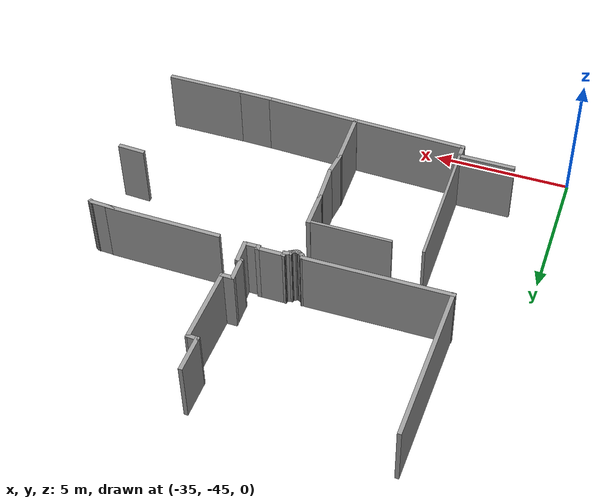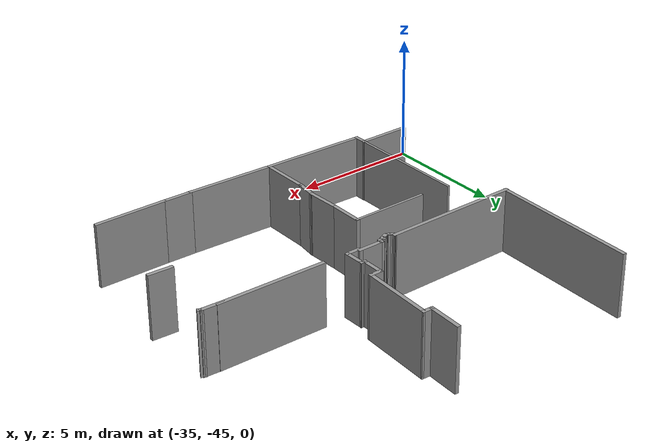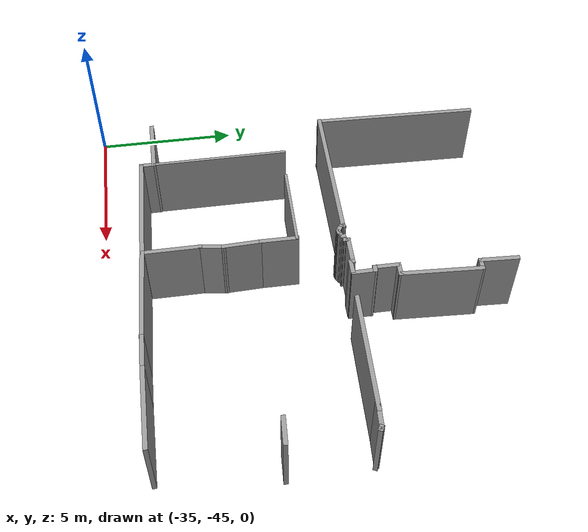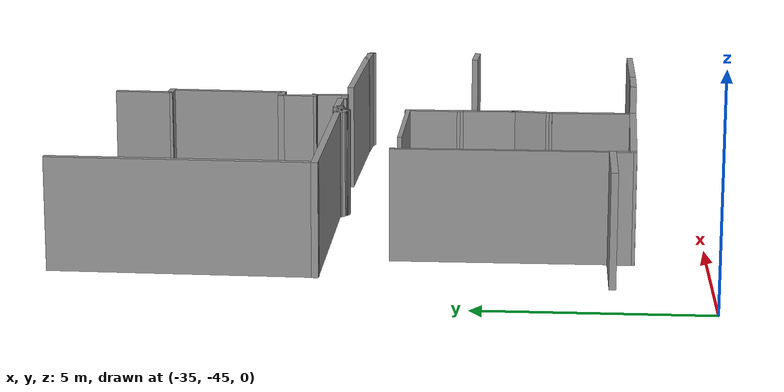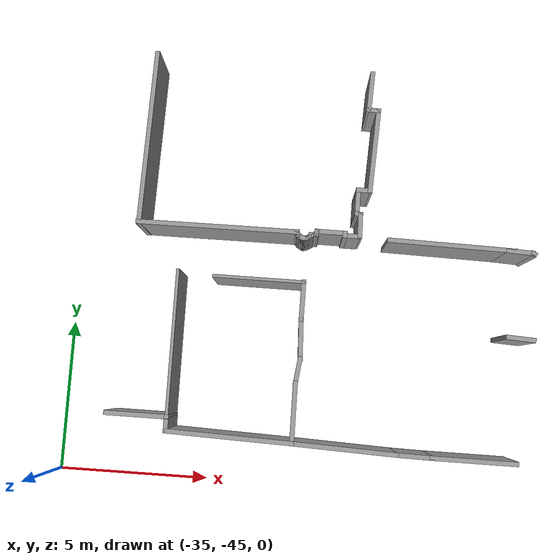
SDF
<sdf version="1.4">
 <model name="3_n">
  <pose>-14.229 -33.4428 0 0 -0 0</pose>
  <link name="Wall_301">
   <collision name="Wall_301_Collision">
    <geometry><box><size>4.81443 0.1 2.5</size></box></geometry>
    <pose>0 0 1.25 0 -0 0</pose>
   </collision>
   <visual name="Wall_301_Visual">
    <pose>0 0 1.25 0 -0 0</pose>
    <geometry><box><size>4.81443 0.1 2.5</size></box></geometry>
    <material>
     <script><uri>file://media/materials/scripts/gazebo.material</uri><name>Gazebo/Grey</name></script>
     <ambient>1 1 1 1</ambient>
    </material>
    <meta><layer>0</layer></meta>
   </visual>
   <pose>-17.037 -7.10025 0 0 -0 -1.56358</pose>
  </link>
  <link name="Wall_303">
   <collision name="Wall_303_Collision">
    <geometry><box><size>3.03967 0.1 2.5</size></box></geometry>
    <pose>0 0 1.25 0 -0 0</pose>
   </collision>
   <visual name="Wall_303_Visual">
    <pose>0 0 1.25 0 -0 0</pose>
    <geometry><box><size>3.03967 0.1 2.5</size></box></geometry>
    <material>
     <script><uri>file://media/materials/scripts/gazebo.material</uri><name>Gazebo/Grey</name></script>
     <ambient>1 1 1 1</ambient>
    </material>
    <meta><layer>0</layer></meta>
   </visual>
   <pose>-14.397 -4.83325 0 0 -0 0</pose>
  </link>
  <link name="Wall_304">
   <collision name="Wall_304_Collision">
    <geometry><box><size>1.35998 0.15 2.5</size></box></geometry>
    <pose>0 0 1.25 0 -0 0</pose>
   </collision>
   <visual name="Wall_304_Visual">
    <pose>0 0 1.25 0 -0 0</pose>
    <geometry><box><size>1.35998 0.15 2.5</size></box></geometry>
    <material>
     <script><uri>file://media/materials/scripts/gazebo.material</uri><name>Gazebo/Grey</name></script>
     <ambient>1 1 1 1</ambient>
    </material>
    <meta><layer>0</layer></meta>
   </visual>
   <pose>-12.9272 -5.43815 0 0 -0 -1.57107</pose>
  </link>
  <link name="Wall_305">
   <collision name="Wall_305_Collision">
    <geometry><box><size>1.42886 0.15 2.5</size></box></geometry>
    <pose>0 0 1.25 0 -0 0</pose>
   </collision>
   <visual name="Wall_305_Visual">
    <pose>0 0 1.25 0 -0 0</pose>
    <geometry><box><size>1.42886 0.15 2.5</size></box></geometry>
    <material>
     <script><uri>file://media/materials/scripts/gazebo.material</uri><name>Gazebo/Grey</name></script>
     <ambient>1 1 1 1</ambient>
    </material>
    <meta><layer>0</layer></meta>
   </visual>
   <pose>-12.8991 -6.68186 0 0 -0 -1.52658</pose>
  </link>
  <link name="Wall_307">
   <collision name="Wall_307_Collision">
    <geometry><box><size>0.944802 0.15 2.5</size></box></geometry>
    <pose>0 0 1.25 0 -0 0</pose>
   </collision>
   <visual name="Wall_307_Visual">
    <pose>0 0 1.25 0 -0 0</pose>
    <geometry><box><size>0.944802 0.15 2.5</size></box></geometry>
    <material>
     <script><uri>file://media/materials/scripts/gazebo.material</uri><name>Gazebo/Grey</name></script>
     <ambient>1 1 1 1</ambient>
    </material>
    <meta><layer>0</layer></meta>
   </visual>
   <pose>-12.9203 -7.71498 0 0 -0 -1.69556</pose>
  </link>
  <link name="Wall_308">
   <collision name="Wall_308_Collision">
    <geometry><box><size>1.92942 0.15 2.5</size></box></geometry>
    <pose>0 0 1.25 0 -0 0</pose>
   </collision>
   <visual name="Wall_308_Visual">
    <pose>0 0 1.25 0 -0 0</pose>
    <geometry><box><size>1.92942 0.15 2.5</size></box></geometry>
    <material>
     <script><uri>file://media/materials/scripts/gazebo.material</uri><name>Gazebo/Grey</name></script>
     <ambient>1 1 1 1</ambient>
    </material>
    <meta><layer>0</layer></meta>
   </visual>
   <pose>-12.9623 -8.99897 0 0 -0 -1.56239</pose>
  </link>
  <link name="Wall_311">
   <collision name="Wall_311_Collision">
    <geometry><box><size>0.983767 0.15 2.5</size></box></geometry>
    <pose>0 0 1.25 0 -0 0</pose>
   </collision>
   <visual name="Wall_311_Visual">
    <pose>0 0 1.25 0 -0 0</pose>
    <geometry><box><size>0.983767 0.15 2.5</size></box></geometry>
    <material>
     <script><uri>file://media/materials/scripts/gazebo.material</uri><name>Gazebo/Grey</name></script>
     <ambient>1 1 1 1</ambient>
    </material>
    <meta><layer>0</layer></meta>
   </visual>
   <pose>-5.78296 -6.17062 0 0 -0 -0.047152</pose>
  </link>
  <link name="Wall_330">
   <collision name="Wall_330_Collision">
    <geometry><box><size>5.39102 0.15 2.5</size></box></geometry>
    <pose>0 0 1.25 0 -0 0</pose>
   </collision>
   <visual name="Wall_330_Visual">
    <pose>0 0 1.25 0 -0 0</pose>
    <geometry><box><size>5.39102 0.15 2.5</size></box></geometry>
    <material>
     <script><uri>file://media/materials/scripts/gazebo.material</uri><name>Gazebo/Grey</name></script>
     <ambient>1 1 1 1</ambient>
    </material>
    <meta><layer>0</layer></meta>
   </visual>
   <pose>-15.8782 -3.21132 0 0 -0 0.004255</pose>
  </link>
  <link name="Wall_332">
   <collision name="Wall_332_Collision">
    <geometry><box><size>0.236174 0.15 2.5</size></box></geometry>
    <pose>0 0 1.25 0 -0 0</pose>
   </collision>
   <visual name="Wall_332_Visual">
    <pose>0 0 1.25 0 -0 0</pose>
    <geometry><box><size>0.236174 0.15 2.5</size></box></geometry>
    <material>
     <script><uri>file://media/materials/scripts/gazebo.material</uri><name>Gazebo/Grey</name></script>
     <ambient>1 1 1 1</ambient>
    </material>
    <meta><layer>0</layer></meta>
   </visual>
   <pose>-13.2431 -3.24071 0 0 -0 -1.22513</pose>
  </link>
  <link name="Wall_333">
   <collision name="Wall_333_Collision">
    <geometry><box><size>0.23017 0.15 2.5</size></box></geometry>
    <pose>0 0 1.25 0 -0 0</pose>
   </collision>
   <visual name="Wall_333_Visual">
    <pose>0 0 1.25 0 -0 0</pose>
    <geometry><box><size>0.23017 0.15 2.5</size></box></geometry>
    <material>
     <script><uri>file://media/materials/scripts/gazebo.material</uri><name>Gazebo/Grey</name></script>
     <ambient>1 1 1 1</ambient>
    </material>
    <meta><layer>0</layer></meta>
   </visual>
   <pose>-13.1967 -3.30568 0 0 -0 -0.655696</pose>
  </link>
  <link name="Wall_334">
   <collision name="Wall_334_Collision">
    <geometry><box><size>0.235505 0.15 2.5</size></box></geometry>
    <pose>0 0 1.25 0 -0 0</pose>
   </collision>
   <visual name="Wall_334_Visual">
    <pose>0 0 1.25 0 -0 0</pose>
    <geometry><box><size>0.235505 0.15 2.5</size></box></geometry>
    <material>
     <script><uri>file://media/materials/scripts/gazebo.material</uri><name>Gazebo/Grey</name></script>
     <ambient>1 1 1 1</ambient>
    </material>
    <meta><layer>0</layer></meta>
   </visual>
   <pose>-13.1283 -3.35212 0 0 -0 -0.54042</pose>
  </link>
  <link name="Wall_335">
   <collision name="Wall_335_Collision">
    <geometry><box><size>0.207213 0.15 2.5</size></box></geometry>
    <pose>0 0 1.25 0 -0 0</pose>
   </collision>
   <visual name="Wall_335_Visual">
    <pose>0 0 1.25 0 -0 0</pose>
    <geometry><box><size>0.207213 0.15 2.5</size></box></geometry>
    <material>
     <script><uri>file://media/materials/scripts/gazebo.material</uri><name>Gazebo/Grey</name></script>
     <ambient>1 1 1 1</ambient>
    </material>
    <meta><layer>0</layer></meta>
   </visual>
   <pose>-13.0647 -3.38389 0 0 -0 -0.348771</pose>
  </link>
  <link name="Wall_336">
   <collision name="Wall_336_Collision">
    <geometry><box><size>0.194263 0.15 2.5</size></box></geometry>
    <pose>0 0 1.25 0 -0 0</pose>
   </collision>
   <visual name="Wall_336_Visual">
    <pose>0 0 1.25 0 -0 0</pose>
    <geometry><box><size>0.194263 0.15 2.5</size></box></geometry>
    <material>
     <script><uri>file://media/materials/scripts/gazebo.material</uri><name>Gazebo/Grey</name></script>
     <ambient>1 1 1 1</ambient>
    </material>
    <meta><layer>0</layer></meta>
   </visual>
   <pose>-13.0159 -3.39122 0 0 -0 0.110657</pose>
  </link>
  <link name="Wall_337">
   <collision name="Wall_337_Collision">
    <geometry><box><size>0.196372 0.15 2.5</size></box></geometry>
    <pose>0 0 1.25 0 -0 0</pose>
   </collision>
   <visual name="Wall_337_Visual">
    <pose>0 0 1.25 0 -0 0</pose>
    <geometry><box><size>0.196372 0.15 2.5</size></box></geometry>
    <material>
     <script><uri>file://media/materials/scripts/gazebo.material</uri><name>Gazebo/Grey</name></script>
     <ambient>1 1 1 1</ambient>
    </material>
    <meta><layer>0</layer></meta>
   </visual>
   <pose>-12.9719 -3.38145 0 0 -0 0.321751</pose>
  </link>
  <link name="Wall_338">
   <collision name="Wall_338_Collision">
    <geometry><box><size>0.252765 0.15 2.5</size></box></geometry>
    <pose>0 0 1.25 0 -0 0</pose>
   </collision>
   <visual name="Wall_338_Visual">
    <pose>0 0 1.25 0 -0 0</pose>
    <geometry><box><size>0.252765 0.15 2.5</size></box></geometry>
    <material>
     <script><uri>file://media/materials/scripts/gazebo.material</uri><name>Gazebo/Grey</name></script>
     <ambient>1 1 1 1</ambient>
    </material>
    <meta><layer>0</layer></meta>
   </visual>
   <pose>-12.9034 -3.35212 0 0 -0 0.442374</pose>
  </link>
  <link name="Wall_339">
   <collision name="Wall_339_Collision">
    <geometry><box><size>0.22332 0.15 2.5</size></box></geometry>
    <pose>0 0 1.25 0 -0 0</pose>
   </collision>
   <visual name="Wall_339_Visual">
    <pose>0 0 1.25 0 -0 0</pose>
    <geometry><box><size>0.22332 0.15 2.5</size></box></geometry>
    <material>
     <script><uri>file://media/materials/scripts/gazebo.material</uri><name>Gazebo/Grey</name></script>
     <ambient>1 1 1 1</ambient>
    </material>
    <meta><layer>0</layer></meta>
   </visual>
   <pose>-12.8277 -3.30813 0 0 -0 0.643501</pose>
  </link>
  <link name="Wall_340">
   <collision name="Wall_340_Collision">
    <geometry><box><size>0.179328 0.15 2.5</size></box></geometry>
    <pose>0 0 1.25 0 -0 0</pose>
   </collision>
   <visual name="Wall_340_Visual">
    <pose>0 0 1.25 0 -0 0</pose>
    <geometry><box><size>0.179328 0.15 2.5</size></box></geometry>
    <material>
     <script><uri>file://media/materials/scripts/gazebo.material</uri><name>Gazebo/Grey</name></script>
     <ambient>1 1 1 1</ambient>
    </material>
    <meta><layer>0</layer></meta>
   </visual>
   <pose>-12.7983 -3.27147 0 0 -0 1.5708</pose>
  </link>
  <link name="Wall_341">
   <collision name="Wall_341_Collision">
    <geometry><box><size>0.319678 0.15 2.5</size></box></geometry>
    <pose>0 0 1.25 0 -0 0</pose>
   </collision>
   <visual name="Wall_341_Visual">
    <pose>0 0 1.25 0 -0 0</pose>
    <geometry><box><size>0.319678 0.15 2.5</size></box></geometry>
    <material>
     <script><uri>file://media/materials/scripts/gazebo.material</uri><name>Gazebo/Grey</name></script>
     <ambient>1 1 1 1</ambient>
    </material>
    <meta><layer>0</layer></meta>
   </visual>
   <pose>-12.7152 -3.2397 0 0 -0 0.203045</pose>
  </link>
  <link name="Wall_342">
   <collision name="Wall_342_Collision">
    <geometry><box><size>0.244908 0.15 2.5</size></box></geometry>
    <pose>0 0 1.25 0 -0 0</pose>
   </collision>
   <visual name="Wall_342_Visual">
    <pose>0 0 1.25 0 -0 0</pose>
    <geometry><box><size>0.244908 0.15 2.5</size></box></geometry>
    <material>
     <script><uri>file://media/materials/scripts/gazebo.material</uri><name>Gazebo/Grey</name></script>
     <ambient>1 1 1 1</ambient>
    </material>
    <meta><layer>0</layer></meta>
   </visual>
   <pose>-12.6224 -3.17615 0 0 -0 1.3633</pose>
  </link>
  <link name="Wall_343">
   <collision name="Wall_343_Collision">
    <geometry><box><size>1.07384 0.15 2.5</size></box></geometry>
    <pose>0 0 1.25 0 -0 0</pose>
   </collision>
   <visual name="Wall_343_Visual">
    <pose>0 0 1.25 0 -0 0</pose>
    <geometry><box><size>1.07384 0.15 2.5</size></box></geometry>
    <material>
     <script><uri>file://media/materials/scripts/gazebo.material</uri><name>Gazebo/Grey</name></script>
     <ambient>1 1 1 1</ambient>
    </material>
    <meta><layer>0</layer></meta>
   </visual>
   <pose>-12.1507 -3.1346 0 0 -0 0</pose>
  </link>
  <link name="Wall_345">
   <collision name="Wall_345_Collision">
    <geometry><box><size>0.223483 0.15 2.5</size></box></geometry>
    <pose>0 0 1.25 0 -0 0</pose>
   </collision>
   <visual name="Wall_345_Visual">
    <pose>0 0 1.25 0 -0 0</pose>
    <geometry><box><size>0.223483 0.15 2.5</size></box></geometry>
    <material>
     <script><uri>file://media/materials/scripts/gazebo.material</uri><name>Gazebo/Grey</name></script>
     <ambient>1 1 1 1</ambient>
    </material>
    <meta><layer>0</layer></meta>
   </visual>
   <pose>-11.6888 -3.17126 0 0 -0 -1.5708</pose>
  </link>
  <link name="Wall_346">
   <collision name="Wall_346_Collision">
    <geometry><box><size>0.57037 0.15 2.5</size></box></geometry>
    <pose>0 0 1.25 0 -0 0</pose>
   </collision>
   <visual name="Wall_346_Visual">
    <pose>0 0 1.25 0 -0 0</pose>
    <geometry><box><size>0.57037 0.15 2.5</size></box></geometry>
    <material>
     <script><uri>file://media/materials/scripts/gazebo.material</uri><name>Gazebo/Grey</name></script>
     <ambient>1 1 1 1</ambient>
    </material>
    <meta><layer>0</layer></meta>
   </visual>
   <pose>-11.4786 -3.20792 0 0 -0 0</pose>
  </link>
  <link name="Wall_348">
   <collision name="Wall_348_Collision">
    <geometry><box><size>4.2466 0.15 2.5</size></box></geometry>
    <pose>0 0 1.25 0 -0 0</pose>
   </collision>
   <visual name="Wall_348_Visual">
    <pose>0 0 1.25 0 -0 0</pose>
    <geometry><box><size>4.2466 0.15 2.5</size></box></geometry>
    <material>
     <script><uri>file://media/materials/scripts/gazebo.material</uri><name>Gazebo/Grey</name></script>
     <ambient>1 1 1 1</ambient>
    </material>
    <meta><layer>0</layer></meta>
   </visual>
   <pose>-8.16346 -3.28653 0 0 -0 -0.016332</pose>
  </link>
  <link name="Wall_349">
   <collision name="Wall_349_Collision">
    <geometry><box><size>0.95374 0.15 2.5</size></box></geometry>
    <pose>0 0 1.25 0 -0 0</pose>
   </collision>
   <visual name="Wall_349_Visual">
    <pose>0 0 1.25 0 -0 0</pose>
    <geometry><box><size>0.95374 0.15 2.5</size></box></geometry>
    <material>
     <script><uri>file://media/materials/scripts/gazebo.material</uri><name>Gazebo/Grey</name></script>
     <ambient>1 1 1 1</ambient>
    </material>
    <meta><layer>0</layer></meta>
   </visual>
   <pose>-5.91393 -3.33857 0 0 -0 -0.046263</pose>
  </link>
  <link name="Wall_351">
   <collision name="Wall_351_Collision">
    <geometry><box><size>0.216492 0.15 2.5</size></box></geometry>
    <pose>0 0 1.25 0 -0 0</pose>
   </collision>
   <visual name="Wall_351_Visual">
    <pose>0 0 1.25 0 -0 0</pose>
    <geometry><box><size>0.216492 0.15 2.5</size></box></geometry>
    <material>
     <script><uri>file://media/materials/scripts/gazebo.material</uri><name>Gazebo/Grey</name></script>
     <ambient>1 1 1 1</ambient>
    </material>
    <meta><layer>0</layer></meta>
   </visual>
   <pose>-5.48275 -3.37202 0 0 -0 -0.463648</pose>
  </link>
  <link name="Wall_49">
   <collision name="Wall_49_Collision">
    <geometry><box><size>2.09495 0.15 2.5</size></box></geometry>
    <pose>0 0 1.25 0 -0 0</pose>
   </collision>
   <visual name="Wall_49_Visual">
    <pose>0 0 1.25 0 -0 0</pose>
    <geometry><box><size>2.09495 0.15 2.5</size></box></geometry>
    <material>
     <script><uri>file://media/materials/scripts/gazebo.material</uri><name>Gazebo/Grey</name></script>
     <ambient>1 1 1 1</ambient>
    </material>
    <meta><layer>0</layer></meta>
   </visual>
   <pose>-17.995 -9.48324 0 0 -0 0</pose>
  </link>
  <link name="Wall_50">
   <collision name="Wall_50_Collision">
    <geometry><box><size>0.594112 0.15 2.5</size></box></geometry>
    <pose>0 0 1.25 0 -0 0</pose>
   </collision>
   <visual name="Wall_50_Visual">
    <pose>0 0 1.25 0 -0 0</pose>
    <geometry><box><size>0.594112 0.15 2.5</size></box></geometry>
    <material>
     <script><uri>file://media/materials/scripts/gazebo.material</uri><name>Gazebo/Grey</name></script>
     <ambient>1 1 1 1</ambient>
    </material>
    <meta><layer>0</layer></meta>
   </visual>
   <pose>-17.0198 -9.70528 0 0 -0 -1.55814</pose>
  </link>
  <link name="Wall_52">
   <collision name="Wall_52_Collision">
    <geometry><box><size>4.20859 0.15 2.5</size></box></geometry>
    <pose>0 0 1.25 0 -0 0</pose>
   </collision>
   <visual name="Wall_52_Visual">
    <pose>0 0 1.25 0 -0 0</pose>
    <geometry><box><size>4.20859 0.15 2.5</size></box></geometry>
    <material>
     <script><uri>file://media/materials/scripts/gazebo.material</uri><name>Gazebo/Grey</name></script>
     <ambient>1 1 1 1</ambient>
    </material>
    <meta><layer>0</layer></meta>
   </visual>
   <pose>-14.9884 -9.9839 0 0 -0 -0.027887</pose>
  </link>
  <link name="Wall_54">
   <collision name="Wall_54_Collision">
    <geometry><box><size>3.51973 0.15 2.5</size></box></geometry>
    <pose>0 0 1.25 0 -0 0</pose>
   </collision>
   <visual name="Wall_54_Visual">
    <pose>0 0 1.25 0 -0 0</pose>
    <geometry><box><size>3.51973 0.15 2.5</size></box></geometry>
    <material>
     <script><uri>file://media/materials/scripts/gazebo.material</uri><name>Gazebo/Grey</name></script>
     <ambient>1 1 1 1</ambient>
    </material>
    <meta><layer>0</layer></meta>
   </visual>
   <pose>-11.2761 -10.1 0 0 -0 -0.035305</pose>
  </link>
  <link name="Wall_559">
   <collision name="Wall_559_Collision">
    <geometry><box><size>1.38915 0.15 2.5</size></box></geometry>
    <pose>0 0 1.25 0 -0 0</pose>
   </collision>
   <visual name="Wall_559_Visual">
    <pose>0 0 1.25 0 -0 0</pose>
    <geometry><box><size>1.38915 0.15 2.5</size></box></geometry>
    <material>
     <script><uri>file://media/materials/scripts/gazebo.material</uri><name>Gazebo/Grey</name></script>
     <ambient>1 1 1 1</ambient>
    </material>
    <meta><layer>0</layer></meta>
   </visual>
   <pose>-11.1455 1.68945 0 0 -0 -1.61244</pose>
  </link>
  <link name="Wall_560">
   <collision name="Wall_560_Collision">
    <geometry><box><size>0.477166 0.15 2.5</size></box></geometry>
    <pose>0 0 1.25 0 -0 0</pose>
   </collision>
   <visual name="Wall_560_Visual">
    <pose>0 0 1.25 0 -0 0</pose>
    <geometry><box><size>0.477166 0.15 2.5</size></box></geometry>
    <material>
     <script><uri>file://media/materials/scripts/gazebo.material</uri><name>Gazebo/Grey</name></script>
     <ambient>1 1 1 1</ambient>
    </material>
    <meta><layer>0</layer></meta>
   </visual>
   <pose>-11.0079 1.06181 0 0 -0 -0.052583</pose>
  </link>
  <link name="Wall_561">
   <collision name="Wall_561_Collision">
    <geometry><box><size>2.86955 0.15 2.5</size></box></geometry>
    <pose>0 0 1.25 0 -0 0</pose>
   </collision>
   <visual name="Wall_561_Visual">
    <pose>0 0 1.25 0 -0 0</pose>
    <geometry><box><size>2.86955 0.15 2.5</size></box></geometry>
    <material>
     <script><uri>file://media/materials/scripts/gazebo.material</uri><name>Gazebo/Grey</name></script>
     <ambient>1 1 1 1</ambient>
    </material>
    <meta><layer>0</layer></meta>
   </visual>
   <pose>-10.9047 -0.305224 0 0 -0 -1.61507</pose>
  </link>
  <link name="Wall_562">
   <collision name="Wall_562_Collision">
    <geometry><box><size>0.5283 0.15 2.5</size></box></geometry>
    <pose>0 0 1.25 0 -0 0</pose>
   </collision>
   <visual name="Wall_562_Visual">
    <pose>0 0 1.25 0 -0 0</pose>
    <geometry><box><size>0.5283 0.15 2.5</size></box></geometry>
    <material>
     <script><uri>file://media/materials/scripts/gazebo.material</uri><name>Gazebo/Grey</name></script>
     <ambient>1 1 1 1</ambient>
    </material>
    <meta><layer>0</layer></meta>
   </visual>
   <pose>-11.1541 -1.66366 0 0 -0 3.14159</pose>
  </link>
  <link name="Wall_563">
   <collision name="Wall_563_Collision">
    <geometry><box><size>0.940991 0.15 2.5</size></box></geometry>
    <pose>0 0 1.25 0 -0 0</pose>
   </collision>
   <visual name="Wall_563_Visual">
    <pose>0 0 1.25 0 -0 0</pose>
    <geometry><box><size>0.940991 0.15 2.5</size></box></geometry>
    <material>
     <script><uri>file://media/materials/scripts/gazebo.material</uri><name>Gazebo/Grey</name></script>
     <ambient>1 1 1 1</ambient>
    </material>
    <meta><layer>0</layer></meta>
   </visual>
   <pose>-11.3432 -2.05916 0 0 -0 -1.5708</pose>
  </link>
  <link name="Wall_564">
   <collision name="Wall_564_Collision">
    <geometry><box><size>0.27159 0.15 2.5</size></box></geometry>
    <pose>0 0 1.25 0 -0 0</pose>
   </collision>
   <visual name="Wall_564_Visual">
    <pose>0 0 1.25 0 -0 0</pose>
    <geometry><box><size>0.27159 0.15 2.5</size></box></geometry>
    <material>
     <script><uri>file://media/materials/scripts/gazebo.material</uri><name>Gazebo/Grey</name></script>
     <ambient>1 1 1 1</ambient>
    </material>
    <meta><layer>0</layer></meta>
   </visual>
   <pose>-11.283 -2.46325 0 0 -0 -0.141897</pose>
  </link>
  <link name="Wall_565">
   <collision name="Wall_565_Collision">
    <geometry><box><size>0.872414 0.15 2.5</size></box></geometry>
    <pose>0 0 1.25 0 -0 0</pose>
   </collision>
   <visual name="Wall_565_Visual">
    <pose>0 0 1.25 0 -0 0</pose>
    <geometry><box><size>0.872414 0.15 2.5</size></box></geometry>
    <material>
     <script><uri>file://media/materials/scripts/gazebo.material</uri><name>Gazebo/Grey</name></script>
     <ambient>1 1 1 1</ambient>
    </material>
    <meta><layer>0</layer></meta>
   </visual>
   <pose>-11.2142 -2.83296 0 0 -0 -1.54699</pose>
  </link>
  <link name="Wall_567">
   <collision name="Wall_567_Collision">
    <geometry><box><size>5.87774 0.15 2.5</size></box></geometry>
    <pose>0 0 1.25 0 -0 0</pose>
   </collision>
   <visual name="Wall_567_Visual">
    <pose>0 0 1.25 0 -0 0</pose>
    <geometry><box><size>5.87774 0.15 2.5</size></box></geometry>
    <material>
     <script><uri>file://media/materials/scripts/gazebo.material</uri><name>Gazebo/Grey</name></script>
     <ambient>1 1 1 1</ambient>
    </material>
    <meta><layer>0</layer></meta>
   </visual>
   <pose>-18.4191 -0.365409 0 0 -0 -1.59181</pose>
  </link>
  <link name="Wall_57">
   <collision name="Wall_57_Collision">
    <geometry><box><size>1.29393 0.15 2.5</size></box></geometry>
    <pose>0 0 1.25 0 -0 0</pose>
   </collision>
   <visual name="Wall_57_Visual">
    <pose>0 0 1.25 0 -0 0</pose>
    <geometry><box><size>1.29393 0.15 2.5</size></box></geometry>
    <material>
     <script><uri>file://media/materials/scripts/gazebo.material</uri><name>Gazebo/Grey</name></script>
     <ambient>1 1 1 1</ambient>
    </material>
    <meta><layer>0</layer></meta>
   </visual>
   <pose>-9.0204 -10.1678 0 0 -0 -0.01461</pose>
  </link>
  <link name="Wall_58">
   <collision name="Wall_58_Collision">
    <geometry><box><size>2.85155 0.15 2.5</size></box></geometry>
    <pose>0 0 1.25 0 -0 0</pose>
   </collision>
   <visual name="Wall_58_Visual">
    <pose>0 0 1.25 0 -0 0</pose>
    <geometry><box><size>2.85155 0.15 2.5</size></box></geometry>
    <material>
     <script><uri>file://media/materials/scripts/gazebo.material</uri><name>Gazebo/Grey</name></script>
     <ambient>1 1 1 1</ambient>
    </material>
    <meta><layer>0</layer></meta>
   </visual>
   <pose>-7.09772 -10.1761 0 0 -0 0</pose>
  </link>
  <static>1</static>
 </model>
</sdf>
